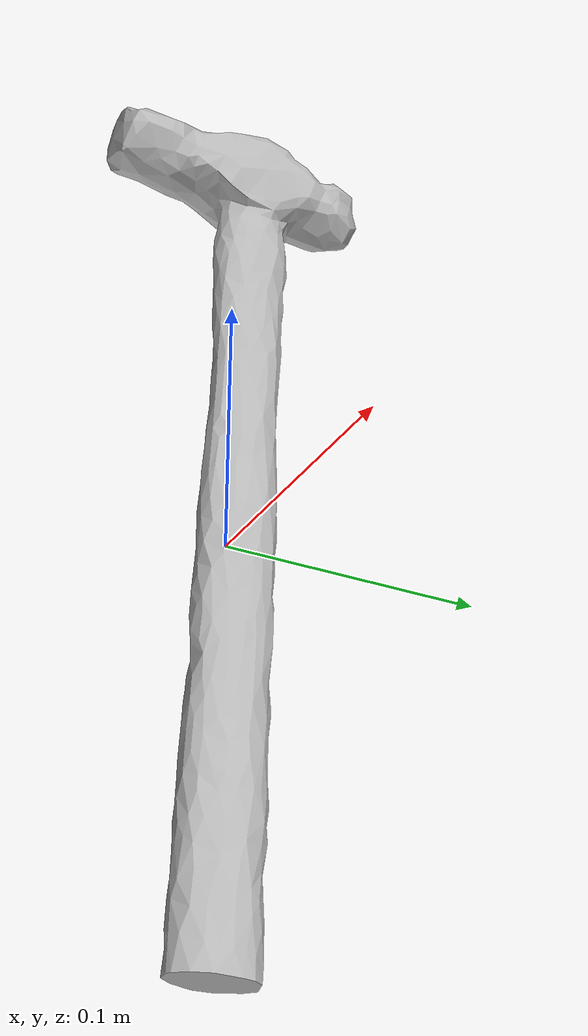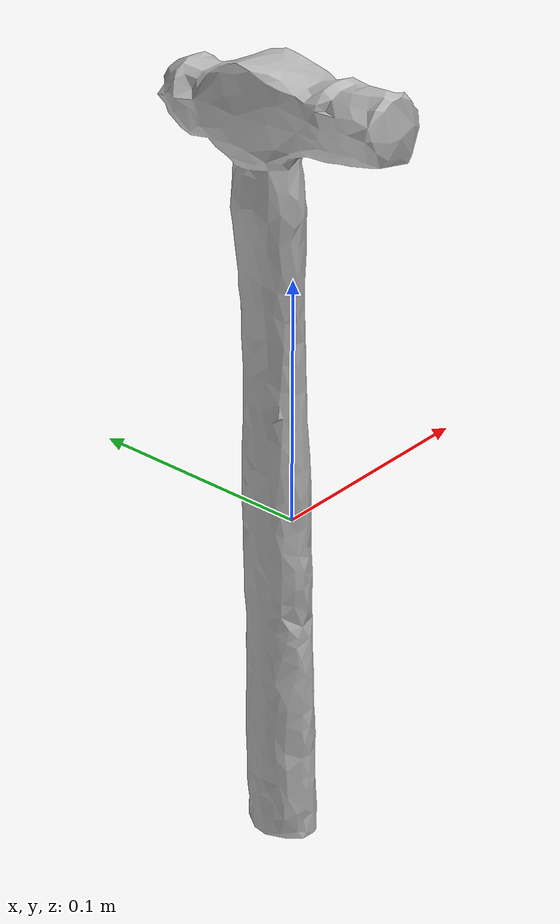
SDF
<?xml version="1.0" ?>
<sdf version="1.4">
  <model name="mallet_ball_pein">
    <pose>0 0 0.017  0 0 0</pose>
    <static>false</static>
    <link name="body">
      <inertial>
        <pose>-0.003343 0.003731 0.027850 0 0 0</pose>
        <mass>1</mass>
        <inertia>
          <ixx>2.39517e-3</ixx>
          <ixy>0.0</ixy>
          <ixz>0.0</ixz>
          <iyy>2.34901e-3</iyy>
          <iyz>0.0</iyz>
          <izz>0.06056e-3</izz>
        </inertia>
      </inertial>
      <visual name="visual">
        <cast_shadows>true</cast_shadows>
        <geometry>
         <mesh>
           <uri>package://costar_objects/sdf/mallet_ball_pein/meshes/mallet_ball_pein.obj</uri>
         </mesh>
        </geometry>
      </visual>
      <collision name="collision">
        <surface>
          <friction>
            <ode>
              <mu>0.3</mu>
              <mu2>0.3</mu2>
            </ode>
          </friction>
        </surface>
        <geometry>
         <mesh>
           <uri>package://costar_objects/sdf/mallet_ball_pein/meshes/mallet_ball_pein.stl</uri>
         </mesh>
        </geometry>
      </collision>
    </link>
  </model>
</sdf>
